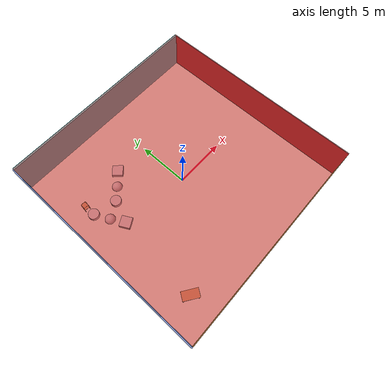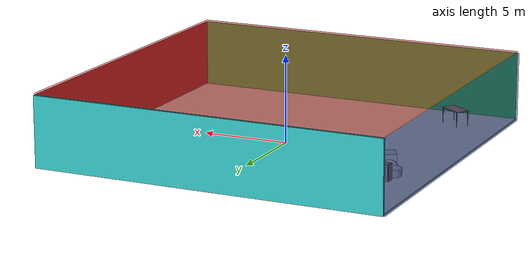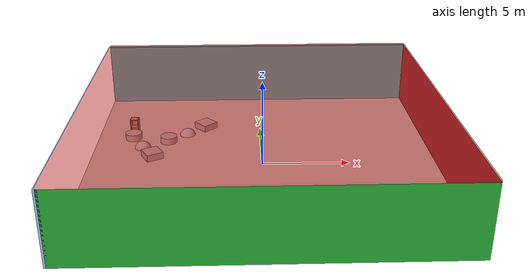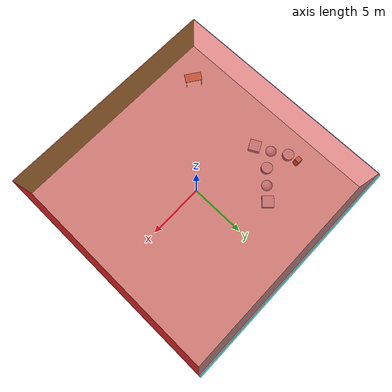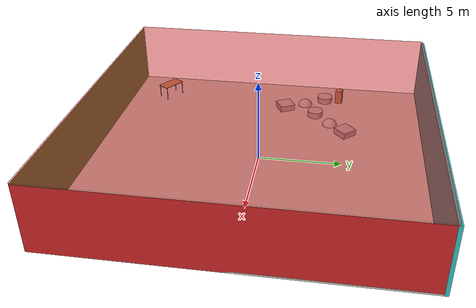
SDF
<sdf version="1.4">
 <world name="default">
  <physics type="ode">
   <max_step_size>0.001</max_step_size>
   <real_time_factor>1</real_time_factor>
   <real_time_update_rate>1000</real_time_update_rate>
   <gravity>0 0 -9.8</gravity>
  </physics>
  <scene><ambient>0.4 0.4 0.4 1</ambient><background>0.7 0.7 0.7 1</background><shadows>1</shadows></scene>
  <model name="Surrounding">
   <static>1</static>
   <link name="Ceiling">
    <collision name="Ceiling_Collision"><geometry><box><size>20 20 0.1</size></box></geometry></collision>
    <visual name="Ceiling_Visual">
     <geometry><box><size>20 20 0.1</size></box></geometry>
     <material>
      <script><uri>file://media/materials/scripts/gazebo.material</uri><name>Gazebo/RedTransparent</name></script>
     </material>
    </visual>
    <pose>0 0 4.05 0 0 0</pose>
   </link>
   <link name="Wall_South">
    <collision name="Wall_South_Collision">
     <geometry><box><size>20 0 4</size></box></geometry>
     <pose>0 0 2 0 -0 0</pose>
    </collision>
    <visual name="Wall_South_Visual">
     <pose>0 0 2 0 -0 0</pose>
     <geometry><box><size>20 0 4</size></box></geometry>
     <material>
      <script><uri>file://media/materials/scripts/gazebo.material</uri><name>Gazebo/Green</name></script>
     </material>
    </visual>
    <velocity_decay><linear>0</linear><angular>0</angular></velocity_decay>
    <pose>0 -10 0 0 -0 0</pose>
   </link>
   <link name="Wall_East">
    <collision name="Wall_21_Collision">
     <geometry><box><size>20 0 4</size></box></geometry>
     <pose>0 0 2 0 -0 0</pose>
    </collision>
    <visual name="Wall_21_Visual">
     <pose>0 0 2 0 -0 0</pose>
     <geometry><box><size>20 0 4</size></box></geometry>
     <material>
      <script><uri>file://media/materials/scripts/gazebo.material</uri><name>Gazebo/RedGlow</name></script>
     </material>
    </visual>
    <velocity_decay><linear>0</linear><angular>0</angular></velocity_decay>
    <pose>10 0 0 0 -0 1.5708</pose>
   </link>
   <link name="Wall_North">
    <collision name="Wall_22_Collision">
     <geometry><box><size>20 0.2 4</size></box></geometry>
     <pose>0 0 2 0 -0 0</pose>
    </collision>
    <visual name="Wall_22_Visual">
     <pose>0 0 2 0 -0 0</pose>
     <geometry><box><size>20 0.2 4</size></box></geometry>
     <material>
      <script>
       <uri>file://media/materials/scripts/gazebo.material</uri>
       <name>Gazebo/TurquoiseGlowOutline</name>
      </script>
     </material>
    </visual>
    <velocity_decay><linear>0</linear><angular>0</angular></velocity_decay>
    <pose>0 10 0 0 -0 0</pose>
   </link>
   <link name="Wall_West">
    <collision name="Wall_23_Collision">
     <geometry><box><size>20 0.2 4</size></box></geometry>
     <pose>0 0 2 0 -0 0</pose>
    </collision>
    <visual name="Wall_23_Visual">
     <pose>0 0 2 0 -0 0</pose>
     <geometry><box><size>20 0.2 4</size></box></geometry>
     <material>
      <script><uri>file://media/materials/scripts/gazebo.material</uri><name>Gazebo/BlueTransparent</name></script>
     </material>
    </visual>
    <velocity_decay><linear>0</linear><angular>0</angular></velocity_decay>
    <pose>-10 0 0 0 0 -1.5708</pose>
   </link>
   <link name="Ground_link">
    <collision name="collision">
     <pose>0 0 .05 0 -0 0</pose>
     <geometry><box><size>20 20 0.1</size></box></geometry>
    </collision>
    <visual name="visual">
     <pose>0 0 .05 0 -0 0</pose>
     <geometry><box><size>20 20 0.1</size></box></geometry>
     <material>
      <script><uri>file://media/materials/scripts/gazebo.material</uri><name>Gazebo/PaintedWall</name></script>
     </material>
    </visual>
   </link>
   <static>1</static>
  </model>
  <spherical_coordinates>
   <surface_model>EARTH_WGS84</surface_model>
   <latitude_deg>0</latitude_deg>
   <longitude_deg>0</longitude_deg>
   <elevation>0</elevation>
   <heading_deg>0</heading_deg>
  </spherical_coordinates>
  <light name="lightball_0" type="diffuse">
   <diffuse>0.8 0.8 0.8 1</diffuse>
   <specular>0.2 0.2 0.2 1</specular>
   <attenuation>
    <range>100</range>
    <constant>0.7</constant>
    <linear>0.01</linear>
    <quadratic>0.001</quadratic>
   </attenuation>
   <direction>-0.5 0.1 -0.9</direction>
   <pose>-1.77454444232 -6.05456016756 3.00573627369 0 0 0</pose>
  </light>
  <include><uri>model://table</uri><pose>-7.24669142068 -7.39713541889 0 0 0 2.53477593493</pose></include>
  <include>
   <uri>model://textured_shapes</uri>
   <pose>-7.14203702313 2.24975354715 0 0 0 0.487687191885</pose>
  </include>
  <include><uri>model://cabinet</uri><pose>-7.87610222778 4.53255810031 0 0 0 1.47539102023</pose></include>
  <include>
   <uri>model://textured_shapes</uri>
   <pose>-4.55132671896 4.0595332891 0 0 0 2.32314155113</pose>
  </include>
 </world>
</sdf>

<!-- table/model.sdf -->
<sdf version="1.5">
  <model name="table">
    <static>true</static>
    <link name="link">
      <collision name="surface">
        <pose>0 0 1.0 0 0 0</pose>
        <geometry>
          <box>
            <size>1.5 0.8 0.03</size>
          </box>
        </geometry>
        <surface>
          <friction>
            <ode>
              <mu>0.6</mu>
              <mu2>0.6</mu2>
            </ode>
          </friction>
        </surface>
      </collision>
      <visual name="visual1">
        <pose>0 0 1.0 0 0 0</pose>
        <geometry>
          <box>
            <size>1.5 0.8 0.03</size>
          </box>
        </geometry>
        <material>
          <script>
            <uri>model://media/materials/scripts/gazebo.material</uri>
            <name>Gazebo/Wood</name>
          </script>
        </material>
      </visual>
      <collision name="front_left_leg">
        <pose>0.68 0.38 0.5 0 0 0</pose>
        <geometry>
          <cylinder>
            <radius>0.02</radius>
            <length>1.0</length>
          </cylinder>
        </geometry>
      </collision>
      <visual name="front_left_leg">
        <pose>0.68 0.38 0.5 0 0 0</pose>
        <geometry>
          <cylinder>
            <radius>0.02</radius>
            <length>1.0</length>
          </cylinder>
        </geometry>
        <material>
          <script>
            <uri>model://media/materials/scripts/gazebo.material</uri>
            <name>Gazebo/Grey</name>
          </script>
        </material>
      </visual>
      <collision name="front_right_leg">
        <pose>0.68 -0.38 0.5 0 0 0</pose>
        <geometry>
          <cylinder>
            <radius>0.02</radius>
            <length>1.0</length>
          </cylinder>
        </geometry>
      </collision>
      <visual name="front_right_leg">
        <pose>0.68 -0.38 0.5 0 0 0</pose>
        <geometry>
          <cylinder>
            <radius>0.02</radius>
            <length>1.0</length>
          </cylinder>
        </geometry>
        <material>
          <script>
            <uri>model://media/materials/scripts/gazebo.material</uri>
            <name>Gazebo/Grey</name>
          </script>
        </material>
      </visual>
      <collision name="back_right_leg">
        <pose>-0.68 -0.38 0.5 0 0 0</pose>
        <geometry>
          <cylinder>
            <radius>0.02</radius>
            <length>1.0</length>
          </cylinder>
        </geometry>
      </collision>
      <visual name="back_right_leg">
        <pose>-0.68 -0.38 0.5 0 0 0</pose>
        <geometry>
          <cylinder>
            <radius>0.02</radius>
            <length>1.0</length>
          </cylinder>
        </geometry>
        <material>
          <script>
            <uri>model://media/materials/scripts/gazebo.material</uri>
            <name>Gazebo/Grey</name>
          </script>
        </material>
      </visual>
      <collision name="back_left_leg">
        <pose>-0.68 0.38 0.5 0 0 0</pose>
        <geometry>
          <cylinder>
            <radius>0.02</radius>
            <length>1.0</length>
          </cylinder>
        </geometry>
      </collision>
      <visual name="back_left_leg">
        <pose>-0.68 0.38 0.5 0 0 0</pose>
        <geometry>
          <cylinder>
            <radius>0.02</radius>
            <length>1.0</length>
          </cylinder>
        </geometry>
        <material>
          <script>
            <uri>model://media/materials/scripts/gazebo.material</uri>
            <name>Gazebo/Grey</name>
          </script>
        </material>
      </visual>
    </link>
  </model>
</sdf>

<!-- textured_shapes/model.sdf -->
<sdf version="1.6">
  <model name="textured_shapes">
    <pose>0 0 0.5 0 0 0</pose>
    <link name="box">
      <pose>0 -1.5 0 0 0 0</pose>
      <collision name="collision">
        <geometry>
          <box>
            <size>1 1 1</size>
          </box>
        </geometry>
      </collision>
      <visual name="visual">
        <geometry>
          <box>
            <size>1 1 1</size>
          </box>
        </geometry>
        <material>
          <script>
            <uri>model://../model_source/models/textured_shapes/materials/scripts</uri>
            <uri>model://../model_source/models/textured_shapes/materials/textures</uri>
            <name>TexturedShape/Squares</name>
          </script>
        </material>
      </visual>
    </link>
    <link name="sphere">
      <collision name="collision">
        <geometry>
          <sphere>
            <radius>0.5</radius>
          </sphere>
        </geometry>
      </collision>
      <visual name="visual">
        <geometry>
          <sphere>
            <radius>0.5</radius>
          </sphere>
        </geometry>
        <material>
          <script>
            <uri>model://../model_source/models/textured_shapes/materials/scripts</uri>
            <uri>model://../model_source/models/textured_shapes/materials/textures</uri>
            <name>TexturedShape/Squares</name>
          </script>
        </material>
      </visual>
    </link>
    <link name="cylinder">
      <pose>0 1.5 0 0 0 0</pose>
      <collision name="collision">
        <geometry>
          <cylinder>
            <radius>0.5</radius>
            <length>1</length>
          </cylinder>
        </geometry>
      </collision>
      <visual name="visual">
        <geometry>
          <cylinder>
            <radius>0.5</radius>
            <length>1</length>
          </cylinder>
        </geometry>
        <material>
          <script>
            <uri>model://../model_source/models/textured_shapes/materials/scripts</uri>
            <uri>model://../model_source/models/textured_shapes/materials/textures</uri>
            <name>TexturedShape/Squares</name>
          </script>
        </material>
      </visual>
    </link>
  </model>
</sdf>

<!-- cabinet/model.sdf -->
<sdf version="1.5">
  <model name="cabinet">
    <static>true</static>
    <link name="cabinet_bottom_plate">
      <inertial>
        <pose>0 0 -1 0 0 0</pose>
        <inertia>
          <ixx>2.050000</ixx>
          <ixy>0</ixy>
          <ixz>0</ixz>
          <iyy>2.050000</iyy>
          <iyz>0</iyz>
          <izz>2.050000</izz>
        </inertia>
        <mass>25.000000</mass>
      </inertial>
      <collision name="cabinet_bottom_plate_geom">
        <pose>0 0 0.010000 0 0 0</pose>
        <geometry>
          <box>
            <size>0.450000 0.450000 0.020000</size>
          </box>
        </geometry>
      </collision>
      <visual name="cabinet_bottom_plate_geom_visual">
        <pose>0 0 0.010000 0 0 0</pose>
        <geometry>
          <box>
            <size>0.450000 0.450000 0.020000</size>
          </box>
        </geometry>
        <material>
          <script>
            <uri>model://media/materials/scripts/gazebo.material</uri>
            <name>Gazebo/Wood</name>
          </script>
        </material>
      </visual>
      <collision name="cabinet_bottom_plate_geom_cabinet_back_plate">
        <pose>0.235000 0 0.510000 0 0 0</pose>
        <geometry>
          <box>
            <size>0.020000 0.450000 1.020000</size>
          </box>
        </geometry>
      </collision>
      <visual name="cabinet_bottom_plate_geom_cabinet_back_plate_visual">
        <pose>0.235000 0 0.510000 0 0 0</pose>
        <geometry>
          <box>
            <size>0.020000 0.450000 1.020000</size>
          </box>
        </geometry>
        <material>
          <script>
            <uri>model://media/materials/scripts/gazebo.material</uri>
            <name>Gazebo/Wood</name>
          </script>
        </material>
      </visual>
      <collision name="cabinet_bottom_plate_geom_cabinet_left_plate">
        <pose>0 0.235000 0.510000 0 0 0</pose>
        <geometry>
          <box>
            <size>0.450000 0.020000 1.020000</size>
          </box>
        </geometry>
      </collision>
      <visual name="cabinet_bottom_plate_geom_cabinet_left_plate_visual">
        <pose>0 0.235000 0.510000 0 0 0</pose>
        <geometry>
          <box>
            <size>0.450000 0.020000 1.020000</size>
          </box>
        </geometry>
        <material>
          <script>
            <uri>model://media/materials/scripts/gazebo.material</uri>
            <name>Gazebo/Wood</name>
          </script>
        </material>
      </visual>
      <collision name="cabinet_bottom_plate_geom_cabinet_middle_plate">
        <pose>0 0 0.510000 0 0 0</pose>
        <geometry>
          <box>
            <size>0.450000 0.450000 0.020000</size>
          </box>
        </geometry>
      </collision>
      <visual name="cabinet_bottom_plate_geom_cabinet_middle_plate_visual">
        <pose>0 0 0.510000 0 0 0</pose>
        <geometry>
          <box>
            <size>0.450000 0.450000 0.020000</size>
          </box>
        </geometry>
        <material>
          <script>
            <uri>model://media/materials/scripts/gazebo.material</uri>
            <name>Gazebo/Wood</name>
          </script>
        </material>
      </visual>
      <collision name="cabinet_bottom_plate_geom_cabinet_right_plate">
        <pose>0 -0.235000 0.510000 0 0 0</pose>
        <geometry>
          <box>
            <size>0.450000 0.020000 1.020000</size>
          </box>
        </geometry>
      </collision>
      <visual name="cabinet_bottom_plate_geom_cabinet_right_plate_visual">
        <pose>0 -0.235000 0.510000 0 0 0</pose>
        <geometry>
          <box>
            <size>0.450000 0.020000 1.020000</size>
          </box>
        </geometry>
        <material>
          <script>
            <uri>model://media/materials/scripts/gazebo.material</uri>
            <name>Gazebo/Wood</name>
          </script>
        </material>
      </visual>
      <collision name="cabinet_bottom_plate_geom_cabinet_top_plate">
        <pose>0 0 1.010000 0 0 0</pose>
        <geometry>
          <box>
            <size>0.450000 0.450000 0.020000</size>
          </box>
        </geometry>
      </collision>
      <visual name="cabinet_bottom_plate_geom_cabinet_top_plate_visual">
        <pose>0 0 1.010000 0 0 0</pose>
        <geometry>
          <box>
            <size>0.450000 0.450000 0.020000</size>
          </box>
        </geometry>
        <material>
          <script>
            <uri>model://media/materials/scripts/gazebo.material</uri>
            <name>Gazebo/Wood</name>
          </script>
        </material>
      </visual>
    </link>
  </model>
</sdf>
